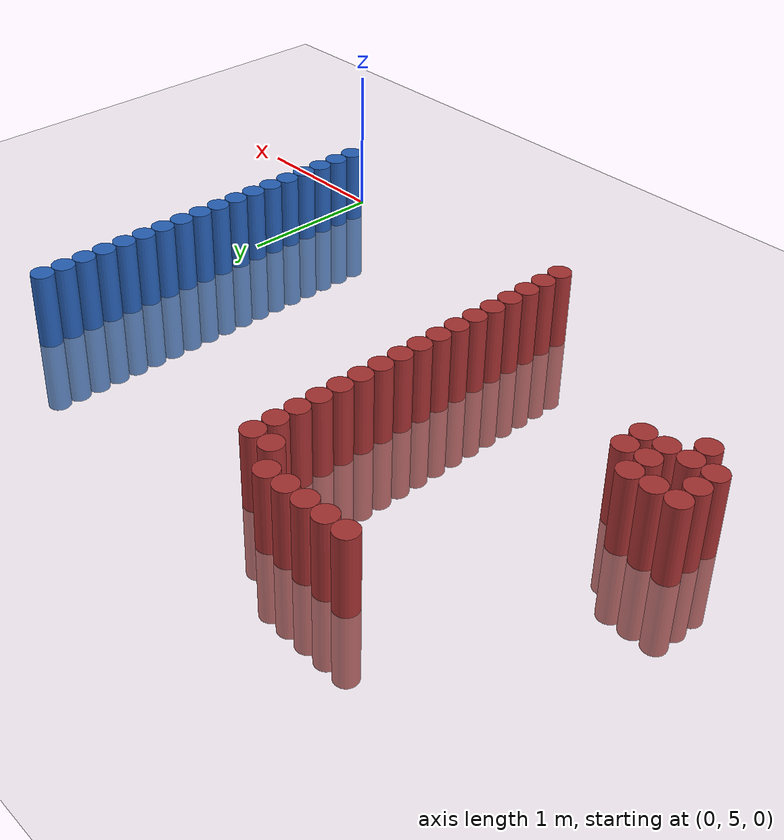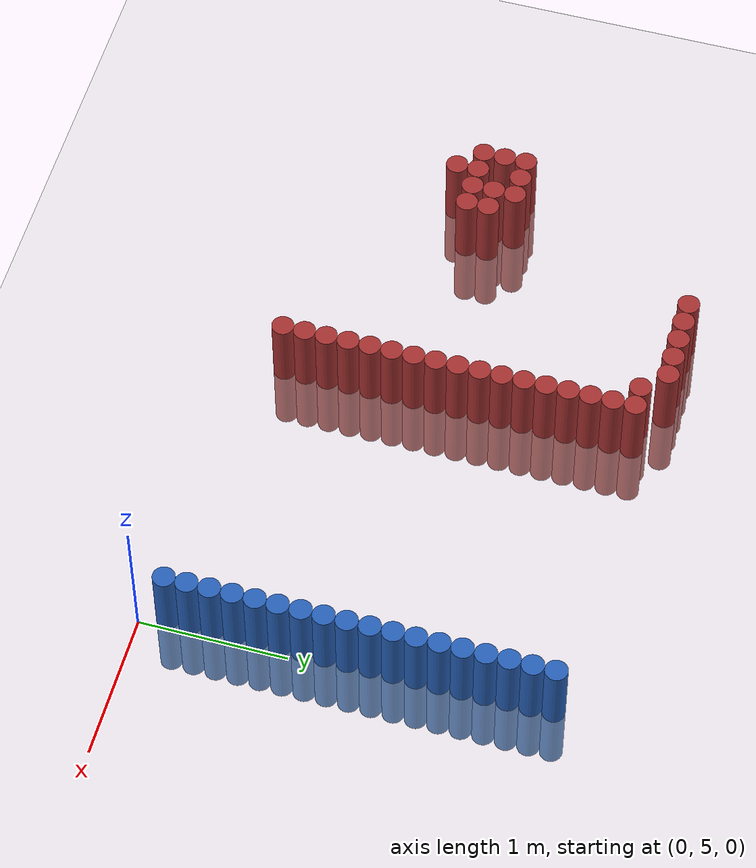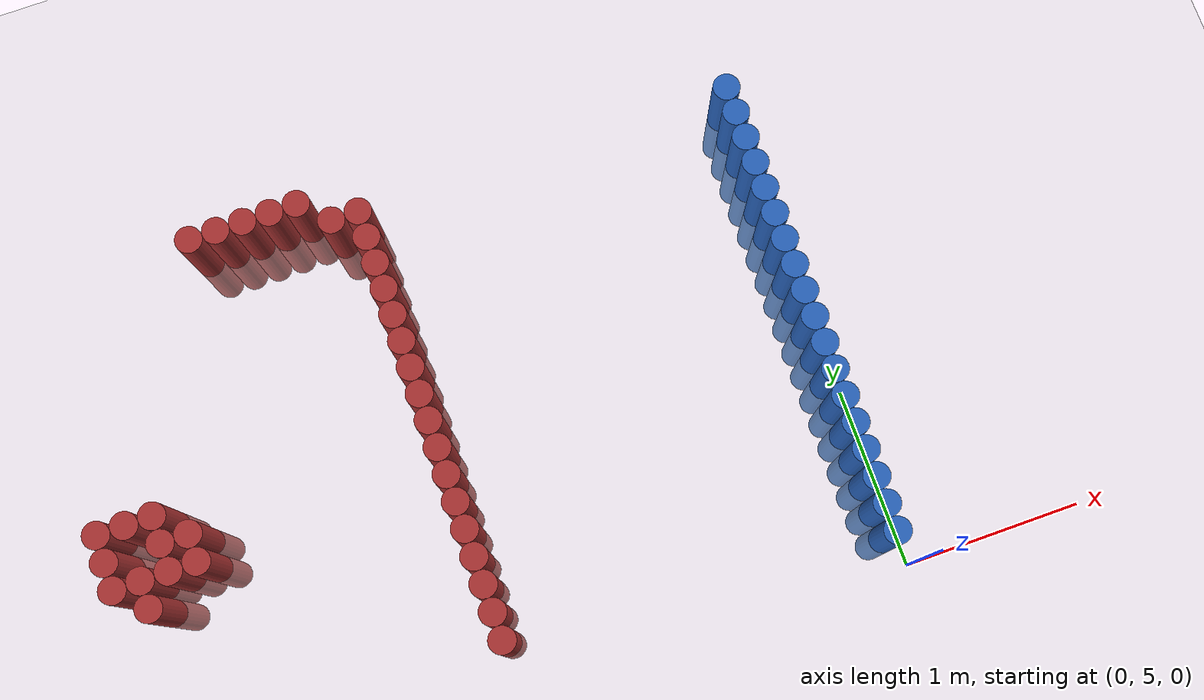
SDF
<sdf version="1.6">
 <world name="default">
  <model name="ground_plane">
   <static>1</static>
   <link name="link">
    <collision name="collision">
     <geometry><plane><normal>0 0 1</normal><size>100 100</size></plane></geometry>
     <surface><friction><ode><mu>100</mu><mu2>50</mu2></ode></friction></surface>
    </collision>
    <visual name="visual">
     <cast_shadows>0</cast_shadows>
     <geometry><plane><normal>0 0 1</normal><size>100 100</size></plane></geometry>
     <material>
      <script><uri>file://media/materials/scripts/gazebo.material</uri><name>Gazebo/Grey</name></script>
     </material>
    </visual>
   </link>
  </model>
  <model name="unit_cylinder_247">
   <static>1</static>
   <pose>-3.975000 6.225000 0.000000 0.000000 0.000000 0.000000</pose>
   <link name="link">
    <inertial>
     <mass>1</mass>
     <inertia><ixx>0.145833</ixx><ixy>0</ixy><ixz>0</ixz><iyy>0.145833</iyy><iyz>0</iyz><izz>0.125</izz></inertia>
    </inertial>
    <collision name="collision">
     <geometry><cylinder><radius>0.075000</radius><length>1</length></cylinder></geometry>
    </collision>
    <visual name="visual">
     <geometry><cylinder><radius>0.075000</radius><length>1</length></cylinder></geometry>
     <material>
      <ambient>0.648000 0.192000 0.192000 1</ambient>
      <diffuse>0.648000 0.192000 0.192000 1</diffuse>
     </material>
     <material>
      <script><name>Gazebo/Grey</name><uri>file://media/materials/scripts/gazebo.material</uri></script>
     </material>
    </visual>
   </link>
  </model>
  <model name="unit_cylinder_248">
   <static>1</static>
   <pose>-3.975000 6.375000 0.000000 0.000000 0.000000 0.000000</pose>
   <link name="link">
    <inertial>
     <mass>1</mass>
     <inertia><ixx>0.145833</ixx><ixy>0</ixy><ixz>0</ixz><iyy>0.145833</iyy><iyz>0</iyz><izz>0.125</izz></inertia>
    </inertial>
    <collision name="collision">
     <geometry><cylinder><radius>0.075000</radius><length>1</length></cylinder></geometry>
    </collision>
    <visual name="visual">
     <geometry><cylinder><radius>0.075000</radius><length>1</length></cylinder></geometry>
     <material>
      <ambient>0.648000 0.192000 0.192000 1</ambient>
      <diffuse>0.648000 0.192000 0.192000 1</diffuse>
     </material>
     <material>
      <script><name>Gazebo/Grey</name><uri>file://media/materials/scripts/gazebo.material</uri></script>
     </material>
    </visual>
   </link>
  </model>
  <model name="unit_cylinder_249">
   <static>1</static>
   <pose>-3.975000 6.525000 0.000000 0.000000 0.000000 0.000000</pose>
   <link name="link">
    <inertial>
     <mass>1</mass>
     <inertia><ixx>0.145833</ixx><ixy>0</ixy><ixz>0</ixz><iyy>0.145833</iyy><iyz>0</iyz><izz>0.125</izz></inertia>
    </inertial>
    <collision name="collision">
     <geometry><cylinder><radius>0.075000</radius><length>1</length></cylinder></geometry>
    </collision>
    <visual name="visual">
     <geometry><cylinder><radius>0.075000</radius><length>1</length></cylinder></geometry>
     <material>
      <ambient>0.648000 0.192000 0.192000 1</ambient>
      <diffuse>0.648000 0.192000 0.192000 1</diffuse>
     </material>
     <material>
      <script><name>Gazebo/Grey</name><uri>file://media/materials/scripts/gazebo.material</uri></script>
     </material>
    </visual>
   </link>
  </model>
  <model name="unit_cylinder_250">
   <static>1</static>
   <pose>-3.825000 6.075000 0.000000 0.000000 0.000000 0.000000</pose>
   <link name="link">
    <inertial>
     <mass>1</mass>
     <inertia><ixx>0.145833</ixx><ixy>0</ixy><ixz>0</ixz><iyy>0.145833</iyy><iyz>0</iyz><izz>0.125</izz></inertia>
    </inertial>
    <collision name="collision">
     <geometry><cylinder><radius>0.075000</radius><length>1</length></cylinder></geometry>
    </collision>
    <visual name="visual">
     <geometry><cylinder><radius>0.075000</radius><length>1</length></cylinder></geometry>
     <material>
      <ambient>0.648000 0.192000 0.192000 1</ambient>
      <diffuse>0.648000 0.192000 0.192000 1</diffuse>
     </material>
     <material>
      <script><name>Gazebo/Grey</name><uri>file://media/materials/scripts/gazebo.material</uri></script>
     </material>
    </visual>
   </link>
  </model>
  <model name="unit_cylinder_251">
   <static>1</static>
   <pose>-3.825000 6.225000 0.000000 0.000000 0.000000 0.000000</pose>
   <link name="link">
    <inertial>
     <mass>1</mass>
     <inertia><ixx>0.145833</ixx><ixy>0</ixy><ixz>0</ixz><iyy>0.145833</iyy><iyz>0</iyz><izz>0.125</izz></inertia>
    </inertial>
    <collision name="collision">
     <geometry><cylinder><radius>0.075000</radius><length>1</length></cylinder></geometry>
    </collision>
    <visual name="visual">
     <geometry><cylinder><radius>0.075000</radius><length>1</length></cylinder></geometry>
     <material>
      <ambient>0.648000 0.192000 0.192000 1</ambient>
      <diffuse>0.648000 0.192000 0.192000 1</diffuse>
     </material>
     <material>
      <script><name>Gazebo/Grey</name><uri>file://media/materials/scripts/gazebo.material</uri></script>
     </material>
    </visual>
   </link>
  </model>
  <model name="unit_cylinder_252">
   <static>1</static>
   <pose>-3.825000 6.525000 0.000000 0.000000 0.000000 0.000000</pose>
   <link name="link">
    <inertial>
     <mass>1</mass>
     <inertia><ixx>0.145833</ixx><ixy>0</ixy><ixz>0</ixz><iyy>0.145833</iyy><iyz>0</iyz><izz>0.125</izz></inertia>
    </inertial>
    <collision name="collision">
     <geometry><cylinder><radius>0.075000</radius><length>1</length></cylinder></geometry>
    </collision>
    <visual name="visual">
     <geometry><cylinder><radius>0.075000</radius><length>1</length></cylinder></geometry>
     <material>
      <ambient>0.648000 0.192000 0.192000 1</ambient>
      <diffuse>0.648000 0.192000 0.192000 1</diffuse>
     </material>
     <material>
      <script><name>Gazebo/Grey</name><uri>file://media/materials/scripts/gazebo.material</uri></script>
     </material>
    </visual>
   </link>
  </model>
  <model name="unit_cylinder_255">
   <static>1</static>
   <pose>-3.675000 6.225000 0.000000 0.000000 0.000000 0.000000</pose>
   <link name="link">
    <inertial>
     <mass>1</mass>
     <inertia><ixx>0.145833</ixx><ixy>0</ixy><ixz>0</ixz><iyy>0.145833</iyy><iyz>0</iyz><izz>0.125</izz></inertia>
    </inertial>
    <collision name="collision">
     <geometry><cylinder><radius>0.075000</radius><length>1</length></cylinder></geometry>
    </collision>
    <visual name="visual">
     <geometry><cylinder><radius>0.075000</radius><length>1</length></cylinder></geometry>
     <material>
      <ambient>0.648000 0.192000 0.192000 1</ambient>
      <diffuse>0.648000 0.192000 0.192000 1</diffuse>
     </material>
     <material>
      <script><name>Gazebo/Grey</name><uri>file://media/materials/scripts/gazebo.material</uri></script>
     </material>
    </visual>
   </link>
  </model>
  <model name="unit_cylinder_256">
   <static>1</static>
   <pose>-3.675000 6.375000 0.000000 0.000000 0.000000 0.000000</pose>
   <link name="link">
    <inertial>
     <mass>1</mass>
     <inertia><ixx>0.145833</ixx><ixy>0</ixy><ixz>0</ixz><iyy>0.145833</iyy><iyz>0</iyz><izz>0.125</izz></inertia>
    </inertial>
    <collision name="collision">
     <geometry><cylinder><radius>0.075000</radius><length>1</length></cylinder></geometry>
    </collision>
    <visual name="visual">
     <geometry><cylinder><radius>0.075000</radius><length>1</length></cylinder></geometry>
     <material>
      <ambient>0.648000 0.192000 0.192000 1</ambient>
      <diffuse>0.648000 0.192000 0.192000 1</diffuse>
     </material>
     <material>
      <script><name>Gazebo/Grey</name><uri>file://media/materials/scripts/gazebo.material</uri></script>
     </material>
    </visual>
   </link>
  </model>
  <model name="unit_cylinder_257">
   <static>1</static>
   <pose>-3.675000 6.525000 0.000000 0.000000 0.000000 0.000000</pose>
   <link name="link">
    <inertial>
     <mass>1</mass>
     <inertia><ixx>0.145833</ixx><ixy>0</ixy><ixz>0</ixz><iyy>0.145833</iyy><iyz>0</iyz><izz>0.125</izz></inertia>
    </inertial>
    <collision name="collision">
     <geometry><cylinder><radius>0.075000</radius><length>1</length></cylinder></geometry>
    </collision>
    <visual name="visual">
     <geometry><cylinder><radius>0.075000</radius><length>1</length></cylinder></geometry>
     <material>
      <ambient>0.648000 0.192000 0.192000 1</ambient>
      <diffuse>0.648000 0.192000 0.192000 1</diffuse>
     </material>
     <material>
      <script><name>Gazebo/Grey</name><uri>file://media/materials/scripts/gazebo.material</uri></script>
     </material>
    </visual>
   </link>
  </model>
  <model name="unit_cylinder_260">
   <static>1</static>
   <pose>-3.525000 6.225000 0.000000 0.000000 0.000000 0.000000</pose>
   <link name="link">
    <inertial>
     <mass>1</mass>
     <inertia><ixx>0.145833</ixx><ixy>0</ixy><ixz>0</ixz><iyy>0.145833</iyy><iyz>0</iyz><izz>0.125</izz></inertia>
    </inertial>
    <collision name="collision">
     <geometry><cylinder><radius>0.075000</radius><length>1</length></cylinder></geometry>
    </collision>
    <visual name="visual">
     <geometry><cylinder><radius>0.075000</radius><length>1</length></cylinder></geometry>
     <material>
      <ambient>0.648000 0.192000 0.192000 1</ambient>
      <diffuse>0.648000 0.192000 0.192000 1</diffuse>
     </material>
     <material>
      <script><name>Gazebo/Grey</name><uri>file://media/materials/scripts/gazebo.material</uri></script>
     </material>
    </visual>
   </link>
  </model>
  <model name="unit_cylinder_261">
   <static>1</static>
   <pose>-3.525000 6.375000 0.000000 0.000000 0.000000 0.000000</pose>
   <link name="link">
    <inertial>
     <mass>1</mass>
     <inertia><ixx>0.145833</ixx><ixy>0</ixy><ixz>0</ixz><iyy>0.145833</iyy><iyz>0</iyz><izz>0.125</izz></inertia>
    </inertial>
    <collision name="collision">
     <geometry><cylinder><radius>0.075000</radius><length>1</length></cylinder></geometry>
    </collision>
    <visual name="visual">
     <geometry><cylinder><radius>0.075000</radius><length>1</length></cylinder></geometry>
     <material>
      <ambient>0.648000 0.192000 0.192000 1</ambient>
      <diffuse>0.648000 0.192000 0.192000 1</diffuse>
     </material>
     <material>
      <script><name>Gazebo/Grey</name><uri>file://media/materials/scripts/gazebo.material</uri></script>
     </material>
    </visual>
   </link>
  </model>
  <model name="unit_cylinder_268">
   <static>1</static>
   <pose>-3.075000 7.875000 0.000000 0.000000 0.000000 0.000000</pose>
   <link name="link">
    <inertial>
     <mass>1</mass>
     <inertia><ixx>0.145833</ixx><ixy>0</ixy><ixz>0</ixz><iyy>0.145833</iyy><iyz>0</iyz><izz>0.125</izz></inertia>
    </inertial>
    <collision name="collision">
     <geometry><cylinder><radius>0.075000</radius><length>1</length></cylinder></geometry>
    </collision>
    <visual name="visual">
     <geometry><cylinder><radius>0.075000</radius><length>1</length></cylinder></geometry>
     <material>
      <ambient>0.648000 0.192000 0.192000 1</ambient>
      <diffuse>0.648000 0.192000 0.192000 1</diffuse>
     </material>
     <material>
      <script><name>Gazebo/Grey</name><uri>file://media/materials/scripts/gazebo.material</uri></script>
     </material>
    </visual>
   </link>
  </model>
  <model name="unit_cylinder_280">
   <static>1</static>
   <pose>-2.925000 7.875000 0.000000 0.000000 0.000000 0.000000</pose>
   <link name="link">
    <inertial>
     <mass>1</mass>
     <inertia><ixx>0.145833</ixx><ixy>0</ixy><ixz>0</ixz><iyy>0.145833</iyy><iyz>0</iyz><izz>0.125</izz></inertia>
    </inertial>
    <collision name="collision">
     <geometry><cylinder><radius>0.075000</radius><length>1</length></cylinder></geometry>
    </collision>
    <visual name="visual">
     <geometry><cylinder><radius>0.075000</radius><length>1</length></cylinder></geometry>
     <material>
      <ambient>0.648000 0.192000 0.192000 1</ambient>
      <diffuse>0.648000 0.192000 0.192000 1</diffuse>
     </material>
     <material>
      <script><name>Gazebo/Grey</name><uri>file://media/materials/scripts/gazebo.material</uri></script>
     </material>
    </visual>
   </link>
  </model>
  <model name="unit_cylinder_282">
   <static>1</static>
   <pose>-2.775000 7.875000 0.000000 0.000000 0.000000 0.000000</pose>
   <link name="link">
    <inertial>
     <mass>1</mass>
     <inertia><ixx>0.145833</ixx><ixy>0</ixy><ixz>0</ixz><iyy>0.145833</iyy><iyz>0</iyz><izz>0.125</izz></inertia>
    </inertial>
    <collision name="collision">
     <geometry><cylinder><radius>0.075000</radius><length>1</length></cylinder></geometry>
    </collision>
    <visual name="visual">
     <geometry><cylinder><radius>0.075000</radius><length>1</length></cylinder></geometry>
     <material>
      <ambient>0.648000 0.192000 0.192000 1</ambient>
      <diffuse>0.648000 0.192000 0.192000 1</diffuse>
     </material>
     <material>
      <script><name>Gazebo/Grey</name><uri>file://media/materials/scripts/gazebo.material</uri></script>
     </material>
    </visual>
   </link>
  </model>
  <model name="unit_cylinder_284">
   <static>1</static>
   <pose>-2.625000 7.875000 0.000000 0.000000 0.000000 0.000000</pose>
   <link name="link">
    <inertial>
     <mass>1</mass>
     <inertia><ixx>0.145833</ixx><ixy>0</ixy><ixz>0</ixz><iyy>0.145833</iyy><iyz>0</iyz><izz>0.125</izz></inertia>
    </inertial>
    <collision name="collision">
     <geometry><cylinder><radius>0.075000</radius><length>1</length></cylinder></geometry>
    </collision>
    <visual name="visual">
     <geometry><cylinder><radius>0.075000</radius><length>1</length></cylinder></geometry>
     <material>
      <ambient>0.648000 0.192000 0.192000 1</ambient>
      <diffuse>0.648000 0.192000 0.192000 1</diffuse>
     </material>
     <material>
      <script><name>Gazebo/Grey</name><uri>file://media/materials/scripts/gazebo.material</uri></script>
     </material>
    </visual>
   </link>
  </model>
  <model name="unit_cylinder_286">
   <static>1</static>
   <pose>-2.475000 7.875000 0.000000 0.000000 0.000000 0.000000</pose>
   <link name="link">
    <inertial>
     <mass>1</mass>
     <inertia><ixx>0.145833</ixx><ixy>0</ixy><ixz>0</ixz><iyy>0.145833</iyy><iyz>0</iyz><izz>0.125</izz></inertia>
    </inertial>
    <collision name="collision">
     <geometry><cylinder><radius>0.075000</radius><length>1</length></cylinder></geometry>
    </collision>
    <visual name="visual">
     <geometry><cylinder><radius>0.075000</radius><length>1</length></cylinder></geometry>
     <material>
      <ambient>0.648000 0.192000 0.192000 1</ambient>
      <diffuse>0.648000 0.192000 0.192000 1</diffuse>
     </material>
     <material>
      <script><name>Gazebo/Grey</name><uri>file://media/materials/scripts/gazebo.material</uri></script>
     </material>
    </visual>
   </link>
  </model>
  <model name="unit_cylinder_288">
   <static>1</static>
   <pose>-2.325000 7.725000 0.000000 0.000000 0.000000 0.000000</pose>
   <link name="link">
    <inertial>
     <mass>1</mass>
     <inertia><ixx>0.145833</ixx><ixy>0</ixy><ixz>0</ixz><iyy>0.145833</iyy><iyz>0</iyz><izz>0.125</izz></inertia>
    </inertial>
    <collision name="collision">
     <geometry><cylinder><radius>0.075000</radius><length>1</length></cylinder></geometry>
    </collision>
    <visual name="visual">
     <geometry><cylinder><radius>0.075000</radius><length>1</length></cylinder></geometry>
     <material>
      <ambient>0.648000 0.192000 0.192000 1</ambient>
      <diffuse>0.648000 0.192000 0.192000 1</diffuse>
     </material>
     <material>
      <script><name>Gazebo/Grey</name><uri>file://media/materials/scripts/gazebo.material</uri></script>
     </material>
    </visual>
   </link>
  </model>
  <model name="unit_cylinder_292">
   <static>1</static>
   <pose>-2.175000 5.325000 0.000000 0.000000 0.000000 0.000000</pose>
   <link name="link">
    <inertial>
     <mass>1</mass>
     <inertia><ixx>0.145833</ixx><ixy>0</ixy><ixz>0</ixz><iyy>0.145833</iyy><iyz>0</iyz><izz>0.125</izz></inertia>
    </inertial>
    <collision name="collision">
     <geometry><cylinder><radius>0.075000</radius><length>1</length></cylinder></geometry>
    </collision>
    <visual name="visual">
     <geometry><cylinder><radius>0.075000</radius><length>1</length></cylinder></geometry>
     <material>
      <ambient>0.648000 0.192000 0.192000 1</ambient>
      <diffuse>0.648000 0.192000 0.192000 1</diffuse>
     </material>
     <material>
      <script><name>Gazebo/Grey</name><uri>file://media/materials/scripts/gazebo.material</uri></script>
     </material>
    </visual>
   </link>
  </model>
  <model name="unit_cylinder_293">
   <static>1</static>
   <pose>-2.175000 5.475000 0.000000 0.000000 0.000000 0.000000</pose>
   <link name="link">
    <inertial>
     <mass>1</mass>
     <inertia><ixx>0.145833</ixx><ixy>0</ixy><ixz>0</ixz><iyy>0.145833</iyy><iyz>0</iyz><izz>0.125</izz></inertia>
    </inertial>
    <collision name="collision">
     <geometry><cylinder><radius>0.075000</radius><length>1</length></cylinder></geometry>
    </collision>
    <visual name="visual">
     <geometry><cylinder><radius>0.075000</radius><length>1</length></cylinder></geometry>
     <material>
      <ambient>0.648000 0.192000 0.192000 1</ambient>
      <diffuse>0.648000 0.192000 0.192000 1</diffuse>
     </material>
     <material>
      <script><name>Gazebo/Grey</name><uri>file://media/materials/scripts/gazebo.material</uri></script>
     </material>
    </visual>
   </link>
  </model>
  <model name="unit_cylinder_294">
   <static>1</static>
   <pose>-2.175000 5.625000 0.000000 0.000000 0.000000 0.000000</pose>
   <link name="link">
    <inertial>
     <mass>1</mass>
     <inertia><ixx>0.145833</ixx><ixy>0</ixy><ixz>0</ixz><iyy>0.145833</iyy><iyz>0</iyz><izz>0.125</izz></inertia>
    </inertial>
    <collision name="collision">
     <geometry><cylinder><radius>0.075000</radius><length>1</length></cylinder></geometry>
    </collision>
    <visual name="visual">
     <geometry><cylinder><radius>0.075000</radius><length>1</length></cylinder></geometry>
     <material>
      <ambient>0.648000 0.192000 0.192000 1</ambient>
      <diffuse>0.648000 0.192000 0.192000 1</diffuse>
     </material>
     <material>
      <script><name>Gazebo/Grey</name><uri>file://media/materials/scripts/gazebo.material</uri></script>
     </material>
    </visual>
   </link>
  </model>
  <model name="unit_cylinder_295">
   <static>1</static>
   <pose>-2.175000 5.775000 0.000000 0.000000 0.000000 0.000000</pose>
   <link name="link">
    <inertial>
     <mass>1</mass>
     <inertia><ixx>0.145833</ixx><ixy>0</ixy><ixz>0</ixz><iyy>0.145833</iyy><iyz>0</iyz><izz>0.125</izz></inertia>
    </inertial>
    <collision name="collision">
     <geometry><cylinder><radius>0.075000</radius><length>1</length></cylinder></geometry>
    </collision>
    <visual name="visual">
     <geometry><cylinder><radius>0.075000</radius><length>1</length></cylinder></geometry>
     <material>
      <ambient>0.648000 0.192000 0.192000 1</ambient>
      <diffuse>0.648000 0.192000 0.192000 1</diffuse>
     </material>
     <material>
      <script><name>Gazebo/Grey</name><uri>file://media/materials/scripts/gazebo.material</uri></script>
     </material>
    </visual>
   </link>
  </model>
  <model name="unit_cylinder_296">
   <static>1</static>
   <pose>-2.175000 5.925000 0.000000 0.000000 0.000000 0.000000</pose>
   <link name="link">
    <inertial>
     <mass>1</mass>
     <inertia><ixx>0.145833</ixx><ixy>0</ixy><ixz>0</ixz><iyy>0.145833</iyy><iyz>0</iyz><izz>0.125</izz></inertia>
    </inertial>
    <collision name="collision">
     <geometry><cylinder><radius>0.075000</radius><length>1</length></cylinder></geometry>
    </collision>
    <visual name="visual">
     <geometry><cylinder><radius>0.075000</radius><length>1</length></cylinder></geometry>
     <material>
      <ambient>0.648000 0.192000 0.192000 1</ambient>
      <diffuse>0.648000 0.192000 0.192000 1</diffuse>
     </material>
     <material>
      <script><name>Gazebo/Grey</name><uri>file://media/materials/scripts/gazebo.material</uri></script>
     </material>
    </visual>
   </link>
  </model>
  <model name="unit_cylinder_297">
   <static>1</static>
   <pose>-2.175000 6.075000 0.000000 0.000000 0.000000 0.000000</pose>
   <link name="link">
    <inertial>
     <mass>1</mass>
     <inertia><ixx>0.145833</ixx><ixy>0</ixy><ixz>0</ixz><iyy>0.145833</iyy><iyz>0</iyz><izz>0.125</izz></inertia>
    </inertial>
    <collision name="collision">
     <geometry><cylinder><radius>0.075000</radius><length>1</length></cylinder></geometry>
    </collision>
    <visual name="visual">
     <geometry><cylinder><radius>0.075000</radius><length>1</length></cylinder></geometry>
     <material>
      <ambient>0.648000 0.192000 0.192000 1</ambient>
      <diffuse>0.648000 0.192000 0.192000 1</diffuse>
     </material>
     <material>
      <script><name>Gazebo/Grey</name><uri>file://media/materials/scripts/gazebo.material</uri></script>
     </material>
    </visual>
   </link>
  </model>
  <model name="unit_cylinder_298">
   <static>1</static>
   <pose>-2.175000 6.225000 0.000000 0.000000 0.000000 0.000000</pose>
   <link name="link">
    <inertial>
     <mass>1</mass>
     <inertia><ixx>0.145833</ixx><ixy>0</ixy><ixz>0</ixz><iyy>0.145833</iyy><iyz>0</iyz><izz>0.125</izz></inertia>
    </inertial>
    <collision name="collision">
     <geometry><cylinder><radius>0.075000</radius><length>1</length></cylinder></geometry>
    </collision>
    <visual name="visual">
     <geometry><cylinder><radius>0.075000</radius><length>1</length></cylinder></geometry>
     <material>
      <ambient>0.648000 0.192000 0.192000 1</ambient>
      <diffuse>0.648000 0.192000 0.192000 1</diffuse>
     </material>
     <material>
      <script><name>Gazebo/Grey</name><uri>file://media/materials/scripts/gazebo.material</uri></script>
     </material>
    </visual>
   </link>
  </model>
  <model name="unit_cylinder_299">
   <static>1</static>
   <pose>-2.175000 6.375000 0.000000 0.000000 0.000000 0.000000</pose>
   <link name="link">
    <inertial>
     <mass>1</mass>
     <inertia><ixx>0.145833</ixx><ixy>0</ixy><ixz>0</ixz><iyy>0.145833</iyy><iyz>0</iyz><izz>0.125</izz></inertia>
    </inertial>
    <collision name="collision">
     <geometry><cylinder><radius>0.075000</radius><length>1</length></cylinder></geometry>
    </collision>
    <visual name="visual">
     <geometry><cylinder><radius>0.075000</radius><length>1</length></cylinder></geometry>
     <material>
      <ambient>0.648000 0.192000 0.192000 1</ambient>
      <diffuse>0.648000 0.192000 0.192000 1</diffuse>
     </material>
     <material>
      <script><name>Gazebo/Grey</name><uri>file://media/materials/scripts/gazebo.material</uri></script>
     </material>
    </visual>
   </link>
  </model>
  <model name="unit_cylinder_300">
   <static>1</static>
   <pose>-2.175000 6.525000 0.000000 0.000000 0.000000 0.000000</pose>
   <link name="link">
    <inertial>
     <mass>1</mass>
     <inertia><ixx>0.145833</ixx><ixy>0</ixy><ixz>0</ixz><iyy>0.145833</iyy><iyz>0</iyz><izz>0.125</izz></inertia>
    </inertial>
    <collision name="collision">
     <geometry><cylinder><radius>0.075000</radius><length>1</length></cylinder></geometry>
    </collision>
    <visual name="visual">
     <geometry><cylinder><radius>0.075000</radius><length>1</length></cylinder></geometry>
     <material>
      <ambient>0.648000 0.192000 0.192000 1</ambient>
      <diffuse>0.648000 0.192000 0.192000 1</diffuse>
     </material>
     <material>
      <script><name>Gazebo/Grey</name><uri>file://media/materials/scripts/gazebo.material</uri></script>
     </material>
    </visual>
   </link>
  </model>
  <model name="unit_cylinder_301">
   <static>1</static>
   <pose>-2.175000 6.675000 0.000000 0.000000 0.000000 0.000000</pose>
   <link name="link">
    <inertial>
     <mass>1</mass>
     <inertia><ixx>0.145833</ixx><ixy>0</ixy><ixz>0</ixz><iyy>0.145833</iyy><iyz>0</iyz><izz>0.125</izz></inertia>
    </inertial>
    <collision name="collision">
     <geometry><cylinder><radius>0.075000</radius><length>1</length></cylinder></geometry>
    </collision>
    <visual name="visual">
     <geometry><cylinder><radius>0.075000</radius><length>1</length></cylinder></geometry>
     <material>
      <ambient>0.648000 0.192000 0.192000 1</ambient>
      <diffuse>0.648000 0.192000 0.192000 1</diffuse>
     </material>
     <material>
      <script><name>Gazebo/Grey</name><uri>file://media/materials/scripts/gazebo.material</uri></script>
     </material>
    </visual>
   </link>
  </model>
  <model name="unit_cylinder_302">
   <static>1</static>
   <pose>-2.175000 6.825000 0.000000 0.000000 0.000000 0.000000</pose>
   <link name="link">
    <inertial>
     <mass>1</mass>
     <inertia><ixx>0.145833</ixx><ixy>0</ixy><ixz>0</ixz><iyy>0.145833</iyy><iyz>0</iyz><izz>0.125</izz></inertia>
    </inertial>
    <collision name="collision">
     <geometry><cylinder><radius>0.075000</radius><length>1</length></cylinder></geometry>
    </collision>
    <visual name="visual">
     <geometry><cylinder><radius>0.075000</radius><length>1</length></cylinder></geometry>
     <material>
      <ambient>0.648000 0.192000 0.192000 1</ambient>
      <diffuse>0.648000 0.192000 0.192000 1</diffuse>
     </material>
     <material>
      <script><name>Gazebo/Grey</name><uri>file://media/materials/scripts/gazebo.material</uri></script>
     </material>
    </visual>
   </link>
  </model>
  <model name="unit_cylinder_303">
   <static>1</static>
   <pose>-2.175000 6.975000 0.000000 0.000000 0.000000 0.000000</pose>
   <link name="link">
    <inertial>
     <mass>1</mass>
     <inertia><ixx>0.145833</ixx><ixy>0</ixy><ixz>0</ixz><iyy>0.145833</iyy><iyz>0</iyz><izz>0.125</izz></inertia>
    </inertial>
    <collision name="collision">
     <geometry><cylinder><radius>0.075000</radius><length>1</length></cylinder></geometry>
    </collision>
    <visual name="visual">
     <geometry><cylinder><radius>0.075000</radius><length>1</length></cylinder></geometry>
     <material>
      <ambient>0.648000 0.192000 0.192000 1</ambient>
      <diffuse>0.648000 0.192000 0.192000 1</diffuse>
     </material>
     <material>
      <script><name>Gazebo/Grey</name><uri>file://media/materials/scripts/gazebo.material</uri></script>
     </material>
    </visual>
   </link>
  </model>
  <model name="unit_cylinder_304">
   <static>1</static>
   <pose>-2.175000 7.125000 0.000000 0.000000 0.000000 0.000000</pose>
   <link name="link">
    <inertial>
     <mass>1</mass>
     <inertia><ixx>0.145833</ixx><ixy>0</ixy><ixz>0</ixz><iyy>0.145833</iyy><iyz>0</iyz><izz>0.125</izz></inertia>
    </inertial>
    <collision name="collision">
     <geometry><cylinder><radius>0.075000</radius><length>1</length></cylinder></geometry>
    </collision>
    <visual name="visual">
     <geometry><cylinder><radius>0.075000</radius><length>1</length></cylinder></geometry>
     <material>
      <ambient>0.648000 0.192000 0.192000 1</ambient>
      <diffuse>0.648000 0.192000 0.192000 1</diffuse>
     </material>
     <material>
      <script><name>Gazebo/Grey</name><uri>file://media/materials/scripts/gazebo.material</uri></script>
     </material>
    </visual>
   </link>
  </model>
  <model name="unit_cylinder_305">
   <static>1</static>
   <pose>-2.175000 7.275000 0.000000 0.000000 0.000000 0.000000</pose>
   <link name="link">
    <inertial>
     <mass>1</mass>
     <inertia><ixx>0.145833</ixx><ixy>0</ixy><ixz>0</ixz><iyy>0.145833</iyy><iyz>0</iyz><izz>0.125</izz></inertia>
    </inertial>
    <collision name="collision">
     <geometry><cylinder><radius>0.075000</radius><length>1</length></cylinder></geometry>
    </collision>
    <visual name="visual">
     <geometry><cylinder><radius>0.075000</radius><length>1</length></cylinder></geometry>
     <material>
      <ambient>0.648000 0.192000 0.192000 1</ambient>
      <diffuse>0.648000 0.192000 0.192000 1</diffuse>
     </material>
     <material>
      <script><name>Gazebo/Grey</name><uri>file://media/materials/scripts/gazebo.material</uri></script>
     </material>
    </visual>
   </link>
  </model>
  <model name="unit_cylinder_306">
   <static>1</static>
   <pose>-2.175000 7.425000 0.000000 0.000000 0.000000 0.000000</pose>
   <link name="link">
    <inertial>
     <mass>1</mass>
     <inertia><ixx>0.145833</ixx><ixy>0</ixy><ixz>0</ixz><iyy>0.145833</iyy><iyz>0</iyz><izz>0.125</izz></inertia>
    </inertial>
    <collision name="collision">
     <geometry><cylinder><radius>0.075000</radius><length>1</length></cylinder></geometry>
    </collision>
    <visual name="visual">
     <geometry><cylinder><radius>0.075000</radius><length>1</length></cylinder></geometry>
     <material>
      <ambient>0.648000 0.192000 0.192000 1</ambient>
      <diffuse>0.648000 0.192000 0.192000 1</diffuse>
     </material>
     <material>
      <script><name>Gazebo/Grey</name><uri>file://media/materials/scripts/gazebo.material</uri></script>
     </material>
    </visual>
   </link>
  </model>
  <model name="unit_cylinder_307">
   <static>1</static>
   <pose>-2.175000 7.575000 0.000000 0.000000 0.000000 0.000000</pose>
   <link name="link">
    <inertial>
     <mass>1</mass>
     <inertia><ixx>0.145833</ixx><ixy>0</ixy><ixz>0</ixz><iyy>0.145833</iyy><iyz>0</iyz><izz>0.125</izz></inertia>
    </inertial>
    <collision name="collision">
     <geometry><cylinder><radius>0.075000</radius><length>1</length></cylinder></geometry>
    </collision>
    <visual name="visual">
     <geometry><cylinder><radius>0.075000</radius><length>1</length></cylinder></geometry>
     <material>
      <ambient>0.648000 0.192000 0.192000 1</ambient>
      <diffuse>0.648000 0.192000 0.192000 1</diffuse>
     </material>
     <material>
      <script><name>Gazebo/Grey</name><uri>file://media/materials/scripts/gazebo.material</uri></script>
     </material>
    </visual>
   </link>
  </model>
  <model name="unit_cylinder_308">
   <static>1</static>
   <pose>-2.175000 7.725000 0.000000 0.000000 0.000000 0.000000</pose>
   <link name="link">
    <inertial>
     <mass>1</mass>
     <inertia><ixx>0.145833</ixx><ixy>0</ixy><ixz>0</ixz><iyy>0.145833</iyy><iyz>0</iyz><izz>0.125</izz></inertia>
    </inertial>
    <collision name="collision">
     <geometry><cylinder><radius>0.075000</radius><length>1</length></cylinder></geometry>
    </collision>
    <visual name="visual">
     <geometry><cylinder><radius>0.075000</radius><length>1</length></cylinder></geometry>
     <material>
      <ambient>0.648000 0.192000 0.192000 1</ambient>
      <diffuse>0.648000 0.192000 0.192000 1</diffuse>
     </material>
     <material>
      <script><name>Gazebo/Grey</name><uri>file://media/materials/scripts/gazebo.material</uri></script>
     </material>
    </visual>
   </link>
  </model>
  <model name="unit_cylinder_336">
   <static>1</static>
   <pose>-0.075000 5.175000 0.000000 0.000000 0.000000 0.000000</pose>
   <link name="link">
    <inertial>
     <mass>1</mass>
     <inertia><ixx>0.145833</ixx><ixy>0</ixy><ixz>0</ixz><iyy>0.145833</iyy><iyz>0</iyz><izz>0.125</izz></inertia>
    </inertial>
    <collision name="collision">
     <geometry><cylinder><radius>0.075000</radius><length>1</length></cylinder></geometry>
    </collision>
    <visual name="visual">
     <geometry><cylinder><radius>0.075000</radius><length>1</length></cylinder></geometry>
     <material>
      <ambient>0.152000 0.379000 0.720000 1</ambient>
      <diffuse>0.152000 0.379000 0.720000 1</diffuse>
     </material>
     <material>
      <script><name>Gazebo/Grey</name><uri>file://media/materials/scripts/gazebo.material</uri></script>
     </material>
    </visual>
   </link>
  </model>
  <model name="unit_cylinder_337">
   <static>1</static>
   <pose>-0.075000 5.325000 0.000000 0.000000 0.000000 0.000000</pose>
   <link name="link">
    <inertial>
     <mass>1</mass>
     <inertia><ixx>0.145833</ixx><ixy>0</ixy><ixz>0</ixz><iyy>0.145833</iyy><iyz>0</iyz><izz>0.125</izz></inertia>
    </inertial>
    <collision name="collision">
     <geometry><cylinder><radius>0.075000</radius><length>1</length></cylinder></geometry>
    </collision>
    <visual name="visual">
     <geometry><cylinder><radius>0.075000</radius><length>1</length></cylinder></geometry>
     <material>
      <ambient>0.152000 0.379000 0.720000 1</ambient>
      <diffuse>0.152000 0.379000 0.720000 1</diffuse>
     </material>
     <material>
      <script><name>Gazebo/Grey</name><uri>file://media/materials/scripts/gazebo.material</uri></script>
     </material>
    </visual>
   </link>
  </model>
  <model name="unit_cylinder_338">
   <static>1</static>
   <pose>-0.075000 5.475000 0.000000 0.000000 0.000000 0.000000</pose>
   <link name="link">
    <inertial>
     <mass>1</mass>
     <inertia><ixx>0.145833</ixx><ixy>0</ixy><ixz>0</ixz><iyy>0.145833</iyy><iyz>0</iyz><izz>0.125</izz></inertia>
    </inertial>
    <collision name="collision">
     <geometry><cylinder><radius>0.075000</radius><length>1</length></cylinder></geometry>
    </collision>
    <visual name="visual">
     <geometry><cylinder><radius>0.075000</radius><length>1</length></cylinder></geometry>
     <material>
      <ambient>0.152000 0.379000 0.720000 1</ambient>
      <diffuse>0.152000 0.379000 0.720000 1</diffuse>
     </material>
     <material>
      <script><name>Gazebo/Grey</name><uri>file://media/materials/scripts/gazebo.material</uri></script>
     </material>
    </visual>
   </link>
  </model>
  <model name="unit_cylinder_339">
   <static>1</static>
   <pose>-0.075000 5.625000 0.000000 0.000000 0.000000 0.000000</pose>
   <link name="link">
    <inertial>
     <mass>1</mass>
     <inertia><ixx>0.145833</ixx><ixy>0</ixy><ixz>0</ixz><iyy>0.145833</iyy><iyz>0</iyz><izz>0.125</izz></inertia>
    </inertial>
    <collision name="collision">
     <geometry><cylinder><radius>0.075000</radius><length>1</length></cylinder></geometry>
    </collision>
    <visual name="visual">
     <geometry><cylinder><radius>0.075000</radius><length>1</length></cylinder></geometry>
     <material>
      <ambient>0.152000 0.379000 0.720000 1</ambient>
      <diffuse>0.152000 0.379000 0.720000 1</diffuse>
     </material>
     <material>
      <script><name>Gazebo/Grey</name><uri>file://media/materials/scripts/gazebo.material</uri></script>
     </material>
    </visual>
   </link>
  </model>
  <model name="unit_cylinder_340">
   <static>1</static>
   <pose>-0.075000 5.775000 0.000000 0.000000 0.000000 0.000000</pose>
   <link name="link">
    <inertial>
     <mass>1</mass>
     <inertia><ixx>0.145833</ixx><ixy>0</ixy><ixz>0</ixz><iyy>0.145833</iyy><iyz>0</iyz><izz>0.125</izz></inertia>
    </inertial>
    <collision name="collision">
     <geometry><cylinder><radius>0.075000</radius><length>1</length></cylinder></geometry>
    </collision>
    <visual name="visual">
     <geometry><cylinder><radius>0.075000</radius><length>1</length></cylinder></geometry>
     <material>
      <ambient>0.152000 0.379000 0.720000 1</ambient>
      <diffuse>0.152000 0.379000 0.720000 1</diffuse>
     </material>
     <material>
      <script><name>Gazebo/Grey</name><uri>file://media/materials/scripts/gazebo.material</uri></script>
     </material>
    </visual>
   </link>
  </model>
  <model name="unit_cylinder_341">
   <static>1</static>
   <pose>-0.075000 5.925000 0.000000 0.000000 0.000000 0.000000</pose>
   <link name="link">
    <inertial>
     <mass>1</mass>
     <inertia><ixx>0.145833</ixx><ixy>0</ixy><ixz>0</ixz><iyy>0.145833</iyy><iyz>0</iyz><izz>0.125</izz></inertia>
    </inertial>
    <collision name="collision">
     <geometry><cylinder><radius>0.075000</radius><length>1</length></cylinder></geometry>
    </collision>
    <visual name="visual">
     <geometry><cylinder><radius>0.075000</radius><length>1</length></cylinder></geometry>
     <material>
      <ambient>0.152000 0.379000 0.720000 1</ambient>
      <diffuse>0.152000 0.379000 0.720000 1</diffuse>
     </material>
     <material>
      <script><name>Gazebo/Grey</name><uri>file://media/materials/scripts/gazebo.material</uri></script>
     </material>
    </visual>
   </link>
  </model>
  <model name="unit_cylinder_342">
   <static>1</static>
   <pose>-0.075000 6.075000 0.000000 0.000000 0.000000 0.000000</pose>
   <link name="link">
    <inertial>
     <mass>1</mass>
     <inertia><ixx>0.145833</ixx><ixy>0</ixy><ixz>0</ixz><iyy>0.145833</iyy><iyz>0</iyz><izz>0.125</izz></inertia>
    </inertial>
    <collision name="collision">
     <geometry><cylinder><radius>0.075000</radius><length>1</length></cylinder></geometry>
    </collision>
    <visual name="visual">
     <geometry><cylinder><radius>0.075000</radius><length>1</length></cylinder></geometry>
     <material>
      <ambient>0.152000 0.379000 0.720000 1</ambient>
      <diffuse>0.152000 0.379000 0.720000 1</diffuse>
     </material>
     <material>
      <script><name>Gazebo/Grey</name><uri>file://media/materials/scripts/gazebo.material</uri></script>
     </material>
    </visual>
   </link>
  </model>
  <model name="unit_cylinder_343">
   <static>1</static>
   <pose>-0.075000 6.225000 0.000000 0.000000 0.000000 0.000000</pose>
   <link name="link">
    <inertial>
     <mass>1</mass>
     <inertia><ixx>0.145833</ixx><ixy>0</ixy><ixz>0</ixz><iyy>0.145833</iyy><iyz>0</iyz><izz>0.125</izz></inertia>
    </inertial>
    <collision name="collision">
     <geometry><cylinder><radius>0.075000</radius><length>1</length></cylinder></geometry>
    </collision>
    <visual name="visual">
     <geometry><cylinder><radius>0.075000</radius><length>1</length></cylinder></geometry>
     <material>
      <ambient>0.152000 0.379000 0.720000 1</ambient>
      <diffuse>0.152000 0.379000 0.720000 1</diffuse>
     </material>
     <material>
      <script><name>Gazebo/Grey</name><uri>file://media/materials/scripts/gazebo.material</uri></script>
     </material>
    </visual>
   </link>
  </model>
  <model name="unit_cylinder_344">
   <static>1</static>
   <pose>-0.075000 6.375000 0.000000 0.000000 0.000000 0.000000</pose>
   <link name="link">
    <inertial>
     <mass>1</mass>
     <inertia><ixx>0.145833</ixx><ixy>0</ixy><ixz>0</ixz><iyy>0.145833</iyy><iyz>0</iyz><izz>0.125</izz></inertia>
    </inertial>
    <collision name="collision">
     <geometry><cylinder><radius>0.075000</radius><length>1</length></cylinder></geometry>
    </collision>
    <visual name="visual">
     <geometry><cylinder><radius>0.075000</radius><length>1</length></cylinder></geometry>
     <material>
      <ambient>0.152000 0.379000 0.720000 1</ambient>
      <diffuse>0.152000 0.379000 0.720000 1</diffuse>
     </material>
     <material>
      <script><name>Gazebo/Grey</name><uri>file://media/materials/scripts/gazebo.material</uri></script>
     </material>
    </visual>
   </link>
  </model>
  <model name="unit_cylinder_345">
   <static>1</static>
   <pose>-0.075000 6.525000 0.000000 0.000000 0.000000 0.000000</pose>
   <link name="link">
    <inertial>
     <mass>1</mass>
     <inertia><ixx>0.145833</ixx><ixy>0</ixy><ixz>0</ixz><iyy>0.145833</iyy><iyz>0</iyz><izz>0.125</izz></inertia>
    </inertial>
    <collision name="collision">
     <geometry><cylinder><radius>0.075000</radius><length>1</length></cylinder></geometry>
    </collision>
    <visual name="visual">
     <geometry><cylinder><radius>0.075000</radius><length>1</length></cylinder></geometry>
     <material>
      <ambient>0.152000 0.379000 0.720000 1</ambient>
      <diffuse>0.152000 0.379000 0.720000 1</diffuse>
     </material>
     <material>
      <script><name>Gazebo/Grey</name><uri>file://media/materials/scripts/gazebo.material</uri></script>
     </material>
    </visual>
   </link>
  </model>
  <model name="unit_cylinder_346">
   <static>1</static>
   <pose>-0.075000 6.675000 0.000000 0.000000 0.000000 0.000000</pose>
   <link name="link">
    <inertial>
     <mass>1</mass>
     <inertia><ixx>0.145833</ixx><ixy>0</ixy><ixz>0</ixz><iyy>0.145833</iyy><iyz>0</iyz><izz>0.125</izz></inertia>
    </inertial>
    <collision name="collision">
     <geometry><cylinder><radius>0.075000</radius><length>1</length></cylinder></geometry>
    </collision>
    <visual name="visual">
     <geometry><cylinder><radius>0.075000</radius><length>1</length></cylinder></geometry>
     <material>
      <ambient>0.152000 0.379000 0.720000 1</ambient>
      <diffuse>0.152000 0.379000 0.720000 1</diffuse>
     </material>
     <material>
      <script><name>Gazebo/Grey</name><uri>file://media/materials/scripts/gazebo.material</uri></script>
     </material>
    </visual>
   </link>
  </model>
  <model name="unit_cylinder_347">
   <static>1</static>
   <pose>-0.075000 6.825000 0.000000 0.000000 0.000000 0.000000</pose>
   <link name="link">
    <inertial>
     <mass>1</mass>
     <inertia><ixx>0.145833</ixx><ixy>0</ixy><ixz>0</ixz><iyy>0.145833</iyy><iyz>0</iyz><izz>0.125</izz></inertia>
    </inertial>
    <collision name="collision">
     <geometry><cylinder><radius>0.075000</radius><length>1</length></cylinder></geometry>
    </collision>
    <visual name="visual">
     <geometry><cylinder><radius>0.075000</radius><length>1</length></cylinder></geometry>
     <material>
      <ambient>0.152000 0.379000 0.720000 1</ambient>
      <diffuse>0.152000 0.379000 0.720000 1</diffuse>
     </material>
     <material>
      <script><name>Gazebo/Grey</name><uri>file://media/materials/scripts/gazebo.material</uri></script>
     </material>
    </visual>
   </link>
  </model>
  <model name="unit_cylinder_348">
   <static>1</static>
   <pose>-0.075000 6.975000 0.000000 0.000000 0.000000 0.000000</pose>
   <link name="link">
    <inertial>
     <mass>1</mass>
     <inertia><ixx>0.145833</ixx><ixy>0</ixy><ixz>0</ixz><iyy>0.145833</iyy><iyz>0</iyz><izz>0.125</izz></inertia>
    </inertial>
    <collision name="collision">
     <geometry><cylinder><radius>0.075000</radius><length>1</length></cylinder></geometry>
    </collision>
    <visual name="visual">
     <geometry><cylinder><radius>0.075000</radius><length>1</length></cylinder></geometry>
     <material>
      <ambient>0.152000 0.379000 0.720000 1</ambient>
      <diffuse>0.152000 0.379000 0.720000 1</diffuse>
     </material>
     <material>
      <script><name>Gazebo/Grey</name><uri>file://media/materials/scripts/gazebo.material</uri></script>
     </material>
    </visual>
   </link>
  </model>
  <model name="unit_cylinder_349">
   <static>1</static>
   <pose>-0.075000 7.125000 0.000000 0.000000 0.000000 0.000000</pose>
   <link name="link">
    <inertial>
     <mass>1</mass>
     <inertia><ixx>0.145833</ixx><ixy>0</ixy><ixz>0</ixz><iyy>0.145833</iyy><iyz>0</iyz><izz>0.125</izz></inertia>
    </inertial>
    <collision name="collision">
     <geometry><cylinder><radius>0.075000</radius><length>1</length></cylinder></geometry>
    </collision>
    <visual name="visual">
     <geometry><cylinder><radius>0.075000</radius><length>1</length></cylinder></geometry>
     <material>
      <ambient>0.152000 0.379000 0.720000 1</ambient>
      <diffuse>0.152000 0.379000 0.720000 1</diffuse>
     </material>
     <material>
      <script><name>Gazebo/Grey</name><uri>file://media/materials/scripts/gazebo.material</uri></script>
     </material>
    </visual>
   </link>
  </model>
  <model name="unit_cylinder_350">
   <static>1</static>
   <pose>-0.075000 7.275000 0.000000 0.000000 0.000000 0.000000</pose>
   <link name="link">
    <inertial>
     <mass>1</mass>
     <inertia><ixx>0.145833</ixx><ixy>0</ixy><ixz>0</ixz><iyy>0.145833</iyy><iyz>0</iyz><izz>0.125</izz></inertia>
    </inertial>
    <collision name="collision">
     <geometry><cylinder><radius>0.075000</radius><length>1</length></cylinder></geometry>
    </collision>
    <visual name="visual">
     <geometry><cylinder><radius>0.075000</radius><length>1</length></cylinder></geometry>
     <material>
      <ambient>0.152000 0.379000 0.720000 1</ambient>
      <diffuse>0.152000 0.379000 0.720000 1</diffuse>
     </material>
     <material>
      <script><name>Gazebo/Grey</name><uri>file://media/materials/scripts/gazebo.material</uri></script>
     </material>
    </visual>
   </link>
  </model>
  <model name="unit_cylinder_351">
   <static>1</static>
   <pose>-0.075000 7.425000 0.000000 0.000000 0.000000 0.000000</pose>
   <link name="link">
    <inertial>
     <mass>1</mass>
     <inertia><ixx>0.145833</ixx><ixy>0</ixy><ixz>0</ixz><iyy>0.145833</iyy><iyz>0</iyz><izz>0.125</izz></inertia>
    </inertial>
    <collision name="collision">
     <geometry><cylinder><radius>0.075000</radius><length>1</length></cylinder></geometry>
    </collision>
    <visual name="visual">
     <geometry><cylinder><radius>0.075000</radius><length>1</length></cylinder></geometry>
     <material>
      <ambient>0.152000 0.379000 0.720000 1</ambient>
      <diffuse>0.152000 0.379000 0.720000 1</diffuse>
     </material>
     <material>
      <script><name>Gazebo/Grey</name><uri>file://media/materials/scripts/gazebo.material</uri></script>
     </material>
    </visual>
   </link>
  </model>
  <model name="unit_cylinder_352">
   <static>1</static>
   <pose>-0.075000 7.575000 0.000000 0.000000 0.000000 0.000000</pose>
   <link name="link">
    <inertial>
     <mass>1</mass>
     <inertia><ixx>0.145833</ixx><ixy>0</ixy><ixz>0</ixz><iyy>0.145833</iyy><iyz>0</iyz><izz>0.125</izz></inertia>
    </inertial>
    <collision name="collision">
     <geometry><cylinder><radius>0.075000</radius><length>1</length></cylinder></geometry>
    </collision>
    <visual name="visual">
     <geometry><cylinder><radius>0.075000</radius><length>1</length></cylinder></geometry>
     <material>
      <ambient>0.152000 0.379000 0.720000 1</ambient>
      <diffuse>0.152000 0.379000 0.720000 1</diffuse>
     </material>
     <material>
      <script><name>Gazebo/Grey</name><uri>file://media/materials/scripts/gazebo.material</uri></script>
     </material>
    </visual>
   </link>
  </model>
  <model name="unit_cylinder_353">
   <static>1</static>
   <pose>-0.075000 7.725000 0.000000 0.000000 0.000000 0.000000</pose>
   <link name="link">
    <inertial>
     <mass>1</mass>
     <inertia><ixx>0.145833</ixx><ixy>0</ixy><ixz>0</ixz><iyy>0.145833</iyy><iyz>0</iyz><izz>0.125</izz></inertia>
    </inertial>
    <collision name="collision">
     <geometry><cylinder><radius>0.075000</radius><length>1</length></cylinder></geometry>
    </collision>
    <visual name="visual">
     <geometry><cylinder><radius>0.075000</radius><length>1</length></cylinder></geometry>
     <material>
      <ambient>0.152000 0.379000 0.720000 1</ambient>
      <diffuse>0.152000 0.379000 0.720000 1</diffuse>
     </material>
     <material>
      <script><name>Gazebo/Grey</name><uri>file://media/materials/scripts/gazebo.material</uri></script>
     </material>
    </visual>
   </link>
  </model>
 </world>
</sdf>
